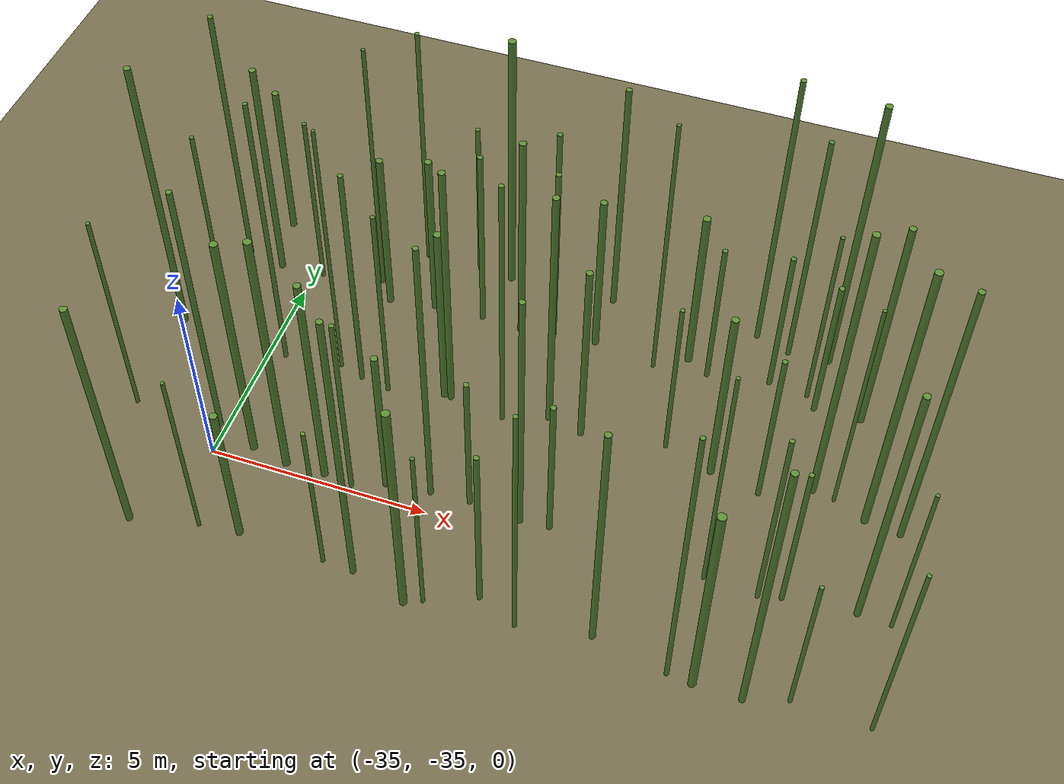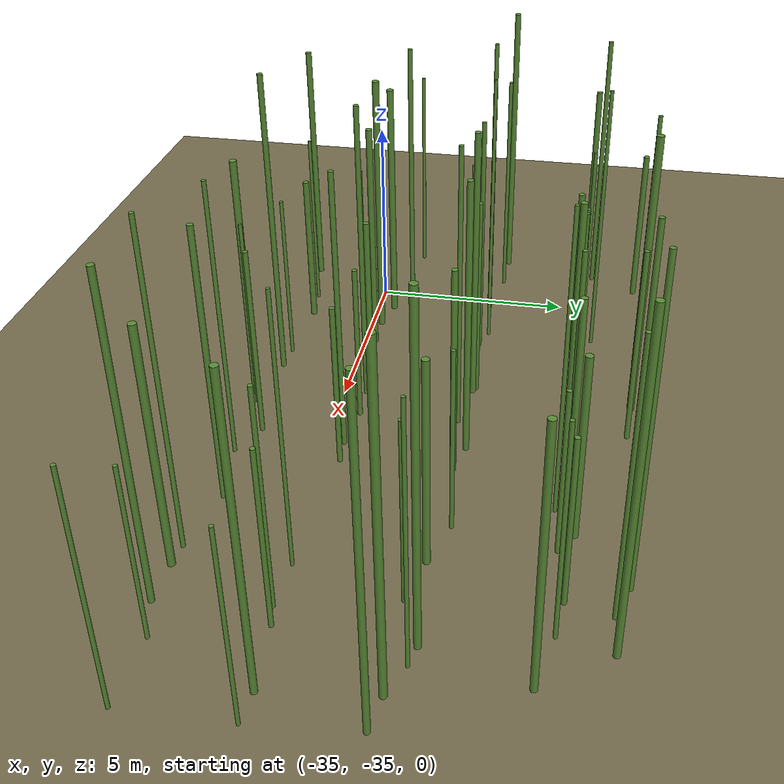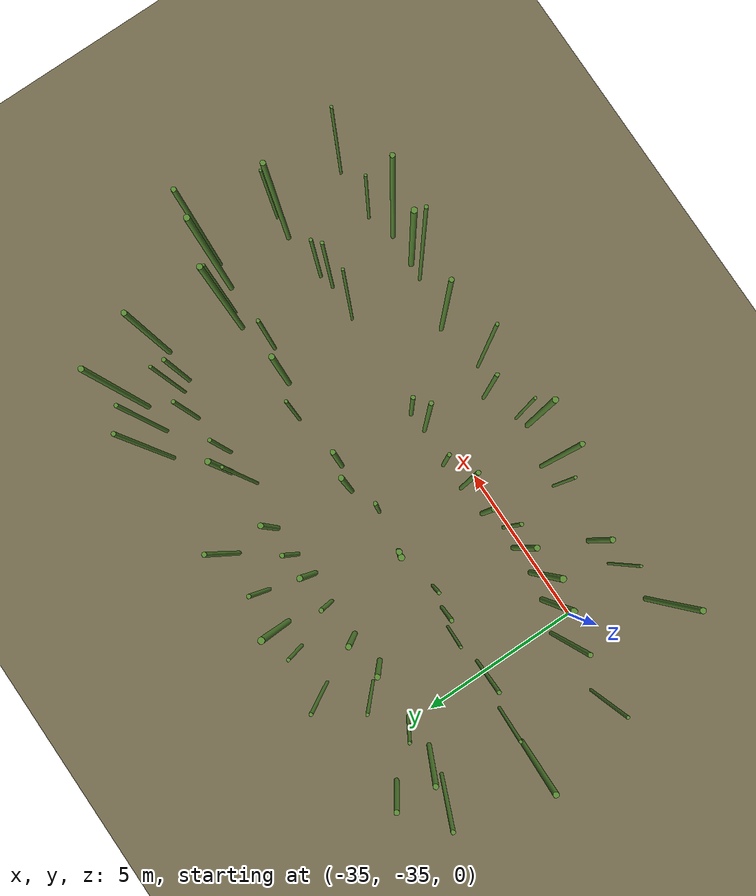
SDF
<sdf version="1.9">
 <world name="bamboo_field">
  <model name="ground_plane">
   <static>true</static>
   <link name="link">
    <collision name="collision">
     <geometry><plane><normal>0 0 1</normal><size>80.0 80.0</size></plane></geometry>
    </collision>
    <visual name="visual">
     <geometry><plane><normal>0 0 1</normal><size>80.0 80.0</size></plane></geometry>
     <material><diffuse>0.45 0.42 0.30 1</diffuse></material>
    </visual>
   </link>
  </model>
  <model name="bamboo_0">
   <static>true</static>
   <pose>-35.91546257525896 -37.1776013783931 3.3533989748458226 0 0 0</pose>
   <link name="link">
    <collision name="collision">
     <geometry>
      <cylinder><radius>0.07682356070820062</radius><length>6.706797949691645</length></cylinder>
     </geometry>
    </collision>
    <visual name="visual">
     <geometry>
      <cylinder><radius>0.07682356070820062</radius><length>6.706797949691645</length></cylinder>
     </geometry>
     <material><diffuse>0.35 0.55 0.20 1</diffuse><specular>0.1 0.1 0.1 1</specular></material>
    </visual>
   </link>
  </model>
  <model name="bamboo_1">
   <static>true</static>
   <pose>-34.42884524841114 -36.85699952481144 2.397675301373297 0 0 0</pose>
   <link name="link">
    <collision name="collision">
     <geometry>
      <cylinder><radius>0.04132679848419318</radius><length>4.795350602746594</length></cylinder>
     </geometry>
    </collision>
    <visual name="visual">
     <geometry>
      <cylinder><radius>0.04132679848419318</radius><length>4.795350602746594</length></cylinder>
     </geometry>
     <material><diffuse>0.35 0.55 0.20 1</diffuse><specular>0.1 0.1 0.1 1</specular></material>
    </visual>
   </link>
  </model>
  <model name="bamboo_2">
   <static>true</static>
   <pose>-33.53151462975757 -36.74976098474193 2.012997519356122 0 0 0</pose>
   <link name="link">
    <collision name="collision">
     <geometry>
      <cylinder><radius>0.08047152283389133</radius><length>4.025995038712244</length></cylinder>
     </geometry>
    </collision>
    <visual name="visual">
     <geometry>
      <cylinder><radius>0.08047152283389133</radius><length>4.025995038712244</length></cylinder>
     </geometry>
     <material><diffuse>0.35 0.55 0.20 1</diffuse><specular>0.1 0.1 0.1 1</specular></material>
    </visual>
   </link>
  </model>
  <model name="bamboo_3">
   <static>true</static>
   <pose>-31.583356614107394 -36.815850339276864 2.193432753666928 0 0 0</pose>
   <link name="link">
    <collision name="collision">
     <geometry>
      <cylinder><radius>0.04463729216900739</radius><length>4.386865507333856</length></cylinder>
     </geometry>
    </collision>
    <visual name="visual">
     <geometry>
      <cylinder><radius>0.04463729216900739</radius><length>4.386865507333856</length></cylinder>
     </geometry>
     <material><diffuse>0.35 0.55 0.20 1</diffuse><specular>0.1 0.1 0.1 1</specular></material>
    </visual>
   </link>
  </model>
  <model name="bamboo_4">
   <static>true</static>
   <pose>-30.888777297195016 -36.85203011934243 3.946231527958741 0 0 0</pose>
   <link name="link">
    <collision name="collision">
     <geometry>
      <cylinder><radius>0.06681140457273503</radius><length>7.892463055917482</length></cylinder>
     </geometry>
    </collision>
    <visual name="visual">
     <geometry>
      <cylinder><radius>0.06681140457273503</radius><length>7.892463055917482</length></cylinder>
     </geometry>
     <material><diffuse>0.35 0.55 0.20 1</diffuse><specular>0.1 0.1 0.1 1</specular></material>
    </visual>
   </link>
  </model>
  <model name="bamboo_5">
   <static>true</static>
   <pose>-29.62878921018922 -37.20638149267473 3.154704290513524 0 0 0</pose>
   <link name="link">
    <collision name="collision">
     <geometry>
      <cylinder><radius>0.08308534501553885</radius><length>6.309408581027048</length></cylinder>
     </geometry>
    </collision>
    <visual name="visual">
     <geometry>
      <cylinder><radius>0.08308534501553885</radius><length>6.309408581027048</length></cylinder>
     </geometry>
     <material><diffuse>0.35 0.55 0.20 1</diffuse><specular>0.1 0.1 0.1 1</specular></material>
    </visual>
   </link>
  </model>
  <model name="bamboo_6">
   <static>true</static>
   <pose>-29.260129184692236 -37.043877039056625 2.4655817727220604 0 0 0</pose>
   <link name="link">
    <collision name="collision">
     <geometry>
      <cylinder><radius>0.04398959884618137</radius><length>4.931163545444121</length></cylinder>
     </geometry>
    </collision>
    <visual name="visual">
     <geometry>
      <cylinder><radius>0.04398959884618137</radius><length>4.931163545444121</length></cylinder>
     </geometry>
     <material><diffuse>0.35 0.55 0.20 1</diffuse><specular>0.1 0.1 0.1 1</specular></material>
    </visual>
   </link>
  </model>
  <model name="bamboo_7">
   <static>true</static>
   <pose>-28.189671932138907 -36.58280034983495 2.4190140615429754 0 0 0</pose>
   <link name="link">
    <collision name="collision">
     <geometry>
      <cylinder><radius>0.05850904835584413</radius><length>4.838028123085951</length></cylinder>
     </geometry>
    </collision>
    <visual name="visual">
     <geometry>
      <cylinder><radius>0.05850904835584413</radius><length>4.838028123085951</length></cylinder>
     </geometry>
     <material><diffuse>0.35 0.55 0.20 1</diffuse><specular>0.1 0.1 0.1 1</specular></material>
    </visual>
   </link>
  </model>
  <model name="bamboo_8">
   <static>true</static>
   <pose>-27.302960507841295 -36.97283975200334 3.4582535959006986 0 0 0</pose>
   <link name="link">
    <collision name="collision">
     <geometry>
      <cylinder><radius>0.04855693240990485</radius><length>6.916507191801397</length></cylinder>
     </geometry>
    </collision>
    <visual name="visual">
     <geometry>
      <cylinder><radius>0.04855693240990485</radius><length>6.916507191801397</length></cylinder>
     </geometry>
     <material><diffuse>0.35 0.55 0.20 1</diffuse><specular>0.1 0.1 0.1 1</specular></material>
    </visual>
   </link>
  </model>
  <model name="bamboo_9">
   <static>true</static>
   <pose>-25.73153656908714 -36.69525862315132 3.369228501979749 0 0 0</pose>
   <link name="link">
    <collision name="collision">
     <geometry>
      <cylinder><radius>0.0678474871887323</radius><length>6.738457003959498</length></cylinder>
     </geometry>
    </collision>
    <visual name="visual">
     <geometry>
      <cylinder><radius>0.0678474871887323</radius><length>6.738457003959498</length></cylinder>
     </geometry>
     <material><diffuse>0.35 0.55 0.20 1</diffuse><specular>0.1 0.1 0.1 1</specular></material>
    </visual>
   </link>
  </model>
  <model name="bamboo_10">
   <static>true</static>
   <pose>-24.090275126679863 -37.018184044674754 3.885819428670109 0 0 0</pose>
   <link name="link">
    <collision name="collision">
     <geometry>
      <cylinder><radius>0.050549142179316324</radius><length>7.771638857340218</length></cylinder>
     </geometry>
    </collision>
    <visual name="visual">
     <geometry>
      <cylinder><radius>0.050549142179316324</radius><length>7.771638857340218</length></cylinder>
     </geometry>
     <material><diffuse>0.35 0.55 0.20 1</diffuse><specular>0.1 0.1 0.1 1</specular></material>
    </visual>
   </link>
  </model>
  <model name="bamboo_11">
   <static>true</static>
   <pose>-23.556140882544145 -37.0658193058479 2.9177037051747976 0 0 0</pose>
   <link name="link">
    <collision name="collision">
     <geometry>
      <cylinder><radius>0.08572737948702717</radius><length>5.835407410349595</length></cylinder>
     </geometry>
    </collision>
    <visual name="visual">
     <geometry>
      <cylinder><radius>0.08572737948702717</radius><length>5.835407410349595</length></cylinder>
     </geometry>
     <material><diffuse>0.35 0.55 0.20 1</diffuse><specular>0.1 0.1 0.1 1</specular></material>
    </visual>
   </link>
  </model>
  <model name="bamboo_12">
   <static>true</static>
   <pose>-22.537429391829242 -37.08493402982359 3.795645767204954 0 0 0</pose>
   <link name="link">
    <collision name="collision">
     <geometry>
      <cylinder><radius>0.06922929951117703</radius><length>7.591291534409908</length></cylinder>
     </geometry>
    </collision>
    <visual name="visual">
     <geometry>
      <cylinder><radius>0.06922929951117703</radius><length>7.591291534409908</length></cylinder>
     </geometry>
     <material><diffuse>0.35 0.55 0.20 1</diffuse><specular>0.1 0.1 0.1 1</specular></material>
    </visual>
   </link>
  </model>
  <model name="bamboo_13">
   <static>true</static>
   <pose>-21.641240311584017 -36.79924633204153 2.094232750849469 0 0 0</pose>
   <link name="link">
    <collision name="collision">
     <geometry>
      <cylinder><radius>0.04454547060868969</radius><length>4.188465501698938</length></cylinder>
     </geometry>
    </collision>
    <visual name="visual">
     <geometry>
      <cylinder><radius>0.04454547060868969</radius><length>4.188465501698938</length></cylinder>
     </geometry>
     <material><diffuse>0.35 0.55 0.20 1</diffuse><specular>0.1 0.1 0.1 1</specular></material>
    </visual>
   </link>
  </model>
  <model name="bamboo_14">
   <static>true</static>
   <pose>-20.003877990916223 -36.868078519664294 2.7632385730130737 0 0 0</pose>
   <link name="link">
    <collision name="collision">
     <geometry>
      <cylinder><radius>0.043176385307597855</radius><length>5.5264771460261475</length></cylinder>
     </geometry>
    </collision>
    <visual name="visual">
     <geometry>
      <cylinder><radius>0.043176385307597855</radius><length>5.5264771460261475</length></cylinder>
     </geometry>
     <material><diffuse>0.35 0.55 0.20 1</diffuse><specular>0.1 0.1 0.1 1</specular></material>
    </visual>
   </link>
  </model>
  <model name="bamboo_66">
   <static>true</static>
   <pose>-37.22687932280543 -34.27532529822672 2.8502923878854682 0 0 0</pose>
   <link name="link">
    <collision name="collision">
     <geometry>
      <cylinder><radius>0.04532936482817695</radius><length>5.7005847757709365</length></cylinder>
     </geometry>
    </collision>
    <visual name="visual">
     <geometry>
      <cylinder><radius>0.04532936482817695</radius><length>5.7005847757709365</length></cylinder>
     </geometry>
     <material><diffuse>0.35 0.55 0.20 1</diffuse><specular>0.1 0.1 0.1 1</specular></material>
    </visual>
   </link>
  </model>
  <model name="bamboo_67">
   <static>true</static>
   <pose>-35.175833175148064 -34.254376810675886 3.602833203444529 0 0 0</pose>
   <link name="link">
    <collision name="collision">
     <geometry>
      <cylinder><radius>0.06282309127350863</radius><length>7.205666406889058</length></cylinder>
     </geometry>
    </collision>
    <visual name="visual">
     <geometry>
      <cylinder><radius>0.06282309127350863</radius><length>7.205666406889058</length></cylinder>
     </geometry>
     <material><diffuse>0.35 0.55 0.20 1</diffuse><specular>0.1 0.1 0.1 1</specular></material>
    </visual>
   </link>
  </model>
  <model name="bamboo_68">
   <static>true</static>
   <pose>-34.20146488767757 -34.592556812445316 3.2253046455235257 0 0 0</pose>
   <link name="link">
    <collision name="collision">
     <geometry>
      <cylinder><radius>0.08457129629052185</radius><length>6.450609291047051</length></cylinder>
     </geometry>
    </collision>
    <visual name="visual">
     <geometry>
      <cylinder><radius>0.08457129629052185</radius><length>6.450609291047051</length></cylinder>
     </geometry>
     <material><diffuse>0.35 0.55 0.20 1</diffuse><specular>0.1 0.1 0.1 1</specular></material>
    </visual>
   </link>
  </model>
  <model name="bamboo_69">
   <static>true</static>
   <pose>-33.34045688690604 -34.76446744389688 3.48731088431917 0 0 0</pose>
   <link name="link">
    <collision name="collision">
     <geometry><cylinder><radius>0.0848604051616631</radius><length>6.97462176863834</length></cylinder></geometry>
    </collision>
    <visual name="visual">
     <geometry><cylinder><radius>0.0848604051616631</radius><length>6.97462176863834</length></cylinder></geometry>
     <material><diffuse>0.35 0.55 0.20 1</diffuse><specular>0.1 0.1 0.1 1</specular></material>
    </visual>
   </link>
  </model>
  <model name="bamboo_70">
   <static>true</static>
   <pose>-32.435109191791064 -34.75368331498012 3.0425996256559644 0 0 0</pose>
   <link name="link">
    <collision name="collision">
     <geometry>
      <cylinder><radius>0.07829068421485827</radius><length>6.085199251311929</length></cylinder>
     </geometry>
    </collision>
    <visual name="visual">
     <geometry>
      <cylinder><radius>0.07829068421485827</radius><length>6.085199251311929</length></cylinder>
     </geometry>
     <material><diffuse>0.35 0.55 0.20 1</diffuse><specular>0.1 0.1 0.1 1</specular></material>
    </visual>
   </link>
  </model>
  <model name="bamboo_71">
   <static>true</static>
   <pose>-31.7647332003695 -34.84903968476109 2.6394191368375246 0 0 0</pose>
   <link name="link">
    <collision name="collision">
     <geometry>
      <cylinder><radius>0.05358575535410923</radius><length>5.278838273675049</length></cylinder>
     </geometry>
    </collision>
    <visual name="visual">
     <geometry>
      <cylinder><radius>0.05358575535410923</radius><length>5.278838273675049</length></cylinder>
     </geometry>
     <material><diffuse>0.35 0.55 0.20 1</diffuse><specular>0.1 0.1 0.1 1</specular></material>
    </visual>
   </link>
  </model>
  <model name="bamboo_72">
   <static>true</static>
   <pose>-31.06501560547453 -34.56607372946966 2.128457701427756 0 0 0</pose>
   <link name="link">
    <collision name="collision">
     <geometry>
      <cylinder><radius>0.07532095708472761</radius><length>4.256915402855512</length></cylinder>
     </geometry>
    </collision>
    <visual name="visual">
     <geometry>
      <cylinder><radius>0.07532095708472761</radius><length>4.256915402855512</length></cylinder>
     </geometry>
     <material><diffuse>0.35 0.55 0.20 1</diffuse><specular>0.1 0.1 0.1 1</specular></material>
    </visual>
   </link>
  </model>
  <model name="bamboo_73">
   <static>true</static>
   <pose>-30.075169880656922 -34.45903543727382 3.809676956680354 0 0 0</pose>
   <link name="link">
    <collision name="collision">
     <geometry>
      <cylinder><radius>0.06100717588867128</radius><length>7.619353913360708</length></cylinder>
     </geometry>
    </collision>
    <visual name="visual">
     <geometry>
      <cylinder><radius>0.06100717588867128</radius><length>7.619353913360708</length></cylinder>
     </geometry>
     <material><diffuse>0.35 0.55 0.20 1</diffuse><specular>0.1 0.1 0.1 1</specular></material>
    </visual>
   </link>
  </model>
  <model name="bamboo_74">
   <static>true</static>
   <pose>-29.195101495808032 -34.41846894028083 2.011792167167986 0 0 0</pose>
   <link name="link">
    <collision name="collision">
     <geometry>
      <cylinder><radius>0.059019051446385584</radius><length>4.023584334335972</length></cylinder>
     </geometry>
    </collision>
    <visual name="visual">
     <geometry>
      <cylinder><radius>0.059019051446385584</radius><length>4.023584334335972</length></cylinder>
     </geometry>
     <material><diffuse>0.35 0.55 0.20 1</diffuse><specular>0.1 0.1 0.1 1</specular></material>
    </visual>
   </link>
  </model>
  <model name="bamboo_75">
   <static>true</static>
   <pose>-28.017660860636976 -34.52362471556353 3.4950313379561013 0 0 0</pose>
   <link name="link">
    <collision name="collision">
     <geometry>
      <cylinder><radius>0.060951064131491095</radius><length>6.990062675912203</length></cylinder>
     </geometry>
    </collision>
    <visual name="visual">
     <geometry>
      <cylinder><radius>0.060951064131491095</radius><length>6.990062675912203</length></cylinder>
     </geometry>
     <material><diffuse>0.35 0.55 0.20 1</diffuse><specular>0.1 0.1 0.1 1</specular></material>
    </visual>
   </link>
  </model>
  <model name="bamboo_76">
   <static>true</static>
   <pose>-27.37644731913227 -34.470502208302555 2.0580496398934303 0 0 0</pose>
   <link name="link">
    <collision name="collision">
     <geometry>
      <cylinder><radius>0.06179179880233183</radius><length>4.1160992797868605</length></cylinder>
     </geometry>
    </collision>
    <visual name="visual">
     <geometry>
      <cylinder><radius>0.06179179880233183</radius><length>4.1160992797868605</length></cylinder>
     </geometry>
     <material><diffuse>0.35 0.55 0.20 1</diffuse><specular>0.1 0.1 0.1 1</specular></material>
    </visual>
   </link>
  </model>
  <model name="bamboo_77">
   <static>true</static>
   <pose>-23.961554744386255 -34.62271261698634 3.2854992960186715 0 0 0</pose>
   <link name="link">
    <collision name="collision">
     <geometry>
      <cylinder><radius>0.04135510231701562</radius><length>6.570998592037343</length></cylinder>
     </geometry>
    </collision>
    <visual name="visual">
     <geometry>
      <cylinder><radius>0.04135510231701562</radius><length>6.570998592037343</length></cylinder>
     </geometry>
     <material><diffuse>0.35 0.55 0.20 1</diffuse><specular>0.1 0.1 0.1 1</specular></material>
    </visual>
   </link>
  </model>
  <model name="bamboo_78">
   <static>true</static>
   <pose>-22.80356973652638 -34.680513176927505 2.653691609762617 0 0 0</pose>
   <link name="link">
    <collision name="collision">
     <geometry>
      <cylinder><radius>0.050583014210574075</radius><length>5.307383219525234</length></cylinder>
     </geometry>
    </collision>
    <visual name="visual">
     <geometry>
      <cylinder><radius>0.050583014210574075</radius><length>5.307383219525234</length></cylinder>
     </geometry>
     <material><diffuse>0.35 0.55 0.20 1</diffuse><specular>0.1 0.1 0.1 1</specular></material>
    </visual>
   </link>
  </model>
  <model name="bamboo_79">
   <static>true</static>
   <pose>-22.32205830169528 -34.568308194276625 2.163812465523285 0 0 0</pose>
   <link name="link">
    <collision name="collision">
     <geometry>
      <cylinder><radius>0.05261357658911903</radius><length>4.32762493104657</length></cylinder>
     </geometry>
    </collision>
    <visual name="visual">
     <geometry>
      <cylinder><radius>0.05261357658911903</radius><length>4.32762493104657</length></cylinder>
     </geometry>
     <material><diffuse>0.35 0.55 0.20 1</diffuse><specular>0.1 0.1 0.1 1</specular></material>
    </visual>
   </link>
  </model>
  <model name="bamboo_80">
   <static>true</static>
   <pose>-20.77943521255588 -34.41793828498073 3.5624660992217896 0 0 0</pose>
   <link name="link">
    <collision name="collision">
     <geometry>
      <cylinder><radius>0.07250720466249375</radius><length>7.124932198443579</length></cylinder>
     </geometry>
    </collision>
    <visual name="visual">
     <geometry>
      <cylinder><radius>0.07250720466249375</radius><length>7.124932198443579</length></cylinder>
     </geometry>
     <material><diffuse>0.35 0.55 0.20 1</diffuse><specular>0.1 0.1 0.1 1</specular></material>
    </visual>
   </link>
  </model>
  <model name="bamboo_81">
   <static>true</static>
   <pose>-20.067464095728262 -34.477280336588464 2.3047646915695807 0 0 0</pose>
   <link name="link">
    <collision name="collision">
     <geometry>
      <cylinder><radius>0.04101900086601662</radius><length>4.6095293831391615</length></cylinder>
     </geometry>
    </collision>
    <visual name="visual">
     <geometry>
      <cylinder><radius>0.04101900086601662</radius><length>4.6095293831391615</length></cylinder>
     </geometry>
     <material><diffuse>0.35 0.55 0.20 1</diffuse><specular>0.1 0.1 0.1 1</specular></material>
    </visual>
   </link>
  </model>
  <model name="bamboo_133">
   <static>true</static>
   <pose>-37.31780632192595 -31.711060600149484 3.8068481241009717 0 0 0</pose>
   <link name="link">
    <collision name="collision">
     <geometry>
      <cylinder><radius>0.07470005813966173</radius><length>7.6136962482019435</length></cylinder>
     </geometry>
    </collision>
    <visual name="visual">
     <geometry>
      <cylinder><radius>0.07470005813966173</radius><length>7.6136962482019435</length></cylinder>
     </geometry>
     <material><diffuse>0.35 0.55 0.20 1</diffuse><specular>0.1 0.1 0.1 1</specular></material>
    </visual>
   </link>
  </model>
  <model name="bamboo_134">
   <static>true</static>
   <pose>-36.13650324627277 -31.713597394046367 3.06233263629752 0 0 0</pose>
   <link name="link">
    <collision name="collision">
     <geometry>
      <cylinder><radius>0.04727848978496992</radius><length>6.12466527259504</length></cylinder>
     </geometry>
    </collision>
    <visual name="visual">
     <geometry>
      <cylinder><radius>0.04727848978496992</radius><length>6.12466527259504</length></cylinder>
     </geometry>
     <material><diffuse>0.35 0.55 0.20 1</diffuse><specular>0.1 0.1 0.1 1</specular></material>
    </visual>
   </link>
  </model>
  <model name="bamboo_135">
   <static>true</static>
   <pose>-34.61614118643878 -31.945556086414534 3.8256580320471096 0 0 0</pose>
   <link name="link">
    <collision name="collision">
     <geometry>
      <cylinder><radius>0.052041489592815654</radius><length>7.651316064094219</length></cylinder>
     </geometry>
    </collision>
    <visual name="visual">
     <geometry>
      <cylinder><radius>0.052041489592815654</radius><length>7.651316064094219</length></cylinder>
     </geometry>
     <material><diffuse>0.35 0.55 0.20 1</diffuse><specular>0.1 0.1 0.1 1</specular></material>
    </visual>
   </link>
  </model>
  <model name="bamboo_136">
   <static>true</static>
   <pose>-33.2838860582441 -31.79403340577368 3.6092661539502924 0 0 0</pose>
   <link name="link">
    <collision name="collision">
     <geometry>
      <cylinder><radius>0.04046987157274355</radius><length>7.218532307900585</length></cylinder>
     </geometry>
    </collision>
    <visual name="visual">
     <geometry>
      <cylinder><radius>0.04046987157274355</radius><length>7.218532307900585</length></cylinder>
     </geometry>
     <material><diffuse>0.35 0.55 0.20 1</diffuse><specular>0.1 0.1 0.1 1</specular></material>
    </visual>
   </link>
  </model>
  <model name="bamboo_137">
   <static>true</static>
   <pose>-32.70428531428259 -31.971344768840407 3.1751434102528426 0 0 0</pose>
   <link name="link">
    <collision name="collision">
     <geometry>
      <cylinder><radius>0.05727828122215409</radius><length>6.350286820505685</length></cylinder>
     </geometry>
    </collision>
    <visual name="visual">
     <geometry>
      <cylinder><radius>0.05727828122215409</radius><length>6.350286820505685</length></cylinder>
     </geometry>
     <material><diffuse>0.35 0.55 0.20 1</diffuse><specular>0.1 0.1 0.1 1</specular></material>
    </visual>
   </link>
  </model>
  <model name="bamboo_138">
   <static>true</static>
   <pose>-32.01325747343007 -32.10231703441373 2.7693864979346907 0 0 0</pose>
   <link name="link">
    <collision name="collision">
     <geometry>
      <cylinder><radius>0.049960849955444614</radius><length>5.538772995869381</length></cylinder>
     </geometry>
    </collision>
    <visual name="visual">
     <geometry>
      <cylinder><radius>0.049960849955444614</radius><length>5.538772995869381</length></cylinder>
     </geometry>
     <material><diffuse>0.35 0.55 0.20 1</diffuse><specular>0.1 0.1 0.1 1</specular></material>
    </visual>
   </link>
  </model>
  <model name="bamboo_139">
   <static>true</static>
   <pose>-30.73817290002743 -31.807600154612956 2.5904615077665385 0 0 0</pose>
   <link name="link">
    <collision name="collision">
     <geometry>
      <cylinder><radius>0.08963460218134488</radius><length>5.180923015533077</length></cylinder>
     </geometry>
    </collision>
    <visual name="visual">
     <geometry>
      <cylinder><radius>0.08963460218134488</radius><length>5.180923015533077</length></cylinder>
     </geometry>
     <material><diffuse>0.35 0.55 0.20 1</diffuse><specular>0.1 0.1 0.1 1</specular></material>
    </visual>
   </link>
  </model>
  <model name="bamboo_140">
   <static>true</static>
   <pose>-30.57861091161674 -31.843876480609502 3.4893376823306506 0 0 0</pose>
   <link name="link">
    <collision name="collision">
     <geometry>
      <cylinder><radius>0.0742899746367006</radius><length>6.978675364661301</length></cylinder>
     </geometry>
    </collision>
    <visual name="visual">
     <geometry>
      <cylinder><radius>0.0742899746367006</radius><length>6.978675364661301</length></cylinder>
     </geometry>
     <material><diffuse>0.35 0.55 0.20 1</diffuse><specular>0.1 0.1 0.1 1</specular></material>
    </visual>
   </link>
  </model>
  <model name="bamboo_141">
   <static>true</static>
   <pose>-29.289305473835405 -32.02173635667831 3.5977202390151977 0 0 0</pose>
   <link name="link">
    <collision name="collision">
     <geometry>
      <cylinder><radius>0.05430970757295972</radius><length>7.195440478030395</length></cylinder>
     </geometry>
    </collision>
    <visual name="visual">
     <geometry>
      <cylinder><radius>0.05430970757295972</radius><length>7.195440478030395</length></cylinder>
     </geometry>
     <material><diffuse>0.35 0.55 0.20 1</diffuse><specular>0.1 0.1 0.1 1</specular></material>
    </visual>
   </link>
  </model>
  <model name="bamboo_142">
   <static>true</static>
   <pose>-28.29817674312631 -31.681525043889273 3.441856753341418 0 0 0</pose>
   <link name="link">
    <collision name="collision">
     <geometry>
      <cylinder><radius>0.07388822293116798</radius><length>6.883713506682836</length></cylinder>
     </geometry>
    </collision>
    <visual name="visual">
     <geometry>
      <cylinder><radius>0.07388822293116798</radius><length>6.883713506682836</length></cylinder>
     </geometry>
     <material><diffuse>0.35 0.55 0.20 1</diffuse><specular>0.1 0.1 0.1 1</specular></material>
    </visual>
   </link>
  </model>
  <model name="bamboo_143">
   <static>true</static>
   <pose>-27.499728346759305 -31.86265936200515 2.617865767905272 0 0 0</pose>
   <link name="link">
    <collision name="collision">
     <geometry>
      <cylinder><radius>0.07231703044452614</radius><length>5.235731535810544</length></cylinder>
     </geometry>
    </collision>
    <visual name="visual">
     <geometry>
      <cylinder><radius>0.07231703044452614</radius><length>5.235731535810544</length></cylinder>
     </geometry>
     <material><diffuse>0.35 0.55 0.20 1</diffuse><specular>0.1 0.1 0.1 1</specular></material>
    </visual>
   </link>
  </model>
  <model name="bamboo_144">
   <static>true</static>
   <pose>-25.619731060756823 -31.588318318915096 2.264319595493567 0 0 0</pose>
   <link name="link">
    <collision name="collision">
     <geometry>
      <cylinder><radius>0.04878200352221533</radius><length>4.528639190987134</length></cylinder>
     </geometry>
    </collision>
    <visual name="visual">
     <geometry>
      <cylinder><radius>0.04878200352221533</radius><length>4.528639190987134</length></cylinder>
     </geometry>
     <material><diffuse>0.35 0.55 0.20 1</diffuse><specular>0.1 0.1 0.1 1</specular></material>
    </visual>
   </link>
  </model>
  <model name="bamboo_145">
   <static>true</static>
   <pose>-24.50769267378512 -31.931067544851416 2.5139401691265246 0 0 0</pose>
   <link name="link">
    <collision name="collision">
     <geometry>
      <cylinder><radius>0.08152363097836987</radius><length>5.027880338253049</length></cylinder>
     </geometry>
    </collision>
    <visual name="visual">
     <geometry>
      <cylinder><radius>0.08152363097836987</radius><length>5.027880338253049</length></cylinder>
     </geometry>
     <material><diffuse>0.35 0.55 0.20 1</diffuse><specular>0.1 0.1 0.1 1</specular></material>
    </visual>
   </link>
  </model>
  <model name="bamboo_146">
   <static>true</static>
   <pose>-23.388354840039085 -32.169831115258916 2.230339414899519 0 0 0</pose>
   <link name="link">
    <collision name="collision">
     <geometry>
      <cylinder><radius>0.056935762690094316</radius><length>4.460678829799038</length></cylinder>
     </geometry>
    </collision>
    <visual name="visual">
     <geometry>
      <cylinder><radius>0.056935762690094316</radius><length>4.460678829799038</length></cylinder>
     </geometry>
     <material><diffuse>0.35 0.55 0.20 1</diffuse><specular>0.1 0.1 0.1 1</specular></material>
    </visual>
   </link>
  </model>
  <model name="bamboo_147">
   <static>true</static>
   <pose>-22.298691238152173 -31.70514967494864 3.9598844855638067 0 0 0</pose>
   <link name="link">
    <collision name="collision">
     <geometry>
      <cylinder><radius>0.07621083560377591</radius><length>7.919768971127613</length></cylinder>
     </geometry>
    </collision>
    <visual name="visual">
     <geometry>
      <cylinder><radius>0.07621083560377591</radius><length>7.919768971127613</length></cylinder>
     </geometry>
     <material><diffuse>0.35 0.55 0.20 1</diffuse><specular>0.1 0.1 0.1 1</specular></material>
    </visual>
   </link>
  </model>
  <model name="bamboo_148">
   <static>true</static>
   <pose>-21.81111982208626 -31.797381158451405 3.0731446165381184 0 0 0</pose>
   <link name="link">
    <collision name="collision">
     <geometry>
      <cylinder><radius>0.04069593275504506</radius><length>6.146289233076237</length></cylinder>
     </geometry>
    </collision>
    <visual name="visual">
     <geometry>
      <cylinder><radius>0.04069593275504506</radius><length>6.146289233076237</length></cylinder>
     </geometry>
     <material><diffuse>0.35 0.55 0.20 1</diffuse><specular>0.1 0.1 0.1 1</specular></material>
    </visual>
   </link>
  </model>
  <model name="bamboo_149">
   <static>true</static>
   <pose>-21.084691451020102 -32.10468569421492 3.8805837835591084 0 0 0</pose>
   <link name="link">
    <collision name="collision">
     <geometry>
      <cylinder><radius>0.08112086506133871</radius><length>7.761167567118217</length></cylinder>
     </geometry>
    </collision>
    <visual name="visual">
     <geometry>
      <cylinder><radius>0.08112086506133871</radius><length>7.761167567118217</length></cylinder>
     </geometry>
     <material><diffuse>0.35 0.55 0.20 1</diffuse><specular>0.1 0.1 0.1 1</specular></material>
    </visual>
   </link>
  </model>
  <model name="bamboo_150">
   <static>true</static>
   <pose>-20.295566822649178 -32.2241090969509 3.830511817486319 0 0 0</pose>
   <link name="link">
    <collision name="collision">
     <geometry>
      <cylinder><radius>0.06807036911249394</radius><length>7.661023634972638</length></cylinder>
     </geometry>
    </collision>
    <visual name="visual">
     <geometry>
      <cylinder><radius>0.06807036911249394</radius><length>7.661023634972638</length></cylinder>
     </geometry>
     <material><diffuse>0.35 0.55 0.20 1</diffuse><specular>0.1 0.1 0.1 1</specular></material>
    </visual>
   </link>
  </model>
  <model name="bamboo_200">
   <static>true</static>
   <pose>-36.78077065132964 -29.189916435308845 3.583323915727087 0 0 0</pose>
   <link name="link">
    <collision name="collision">
     <geometry>
      <cylinder><radius>0.05883396530281501</radius><length>7.166647831454174</length></cylinder>
     </geometry>
    </collision>
    <visual name="visual">
     <geometry>
      <cylinder><radius>0.05883396530281501</radius><length>7.166647831454174</length></cylinder>
     </geometry>
     <material><diffuse>0.35 0.55 0.20 1</diffuse><specular>0.1 0.1 0.1 1</specular></material>
    </visual>
   </link>
  </model>
  <model name="bamboo_201">
   <static>true</static>
   <pose>-35.86619903632877 -29.36261345887968 3.052786679468348 0 0 0</pose>
   <link name="link">
    <collision name="collision">
     <geometry>
      <cylinder><radius>0.07427072201387881</radius><length>6.105573358936696</length></cylinder>
     </geometry>
    </collision>
    <visual name="visual">
     <geometry>
      <cylinder><radius>0.07427072201387881</radius><length>6.105573358936696</length></cylinder>
     </geometry>
     <material><diffuse>0.35 0.55 0.20 1</diffuse><specular>0.1 0.1 0.1 1</specular></material>
    </visual>
   </link>
  </model>
  <model name="bamboo_202">
   <static>true</static>
   <pose>-34.810317385029464 -29.31860827069424 2.4283853224178005 0 0 0</pose>
   <link name="link">
    <collision name="collision">
     <geometry>
      <cylinder><radius>0.04901314614384223</radius><length>4.856770644835601</length></cylinder>
     </geometry>
    </collision>
    <visual name="visual">
     <geometry>
      <cylinder><radius>0.04901314614384223</radius><length>4.856770644835601</length></cylinder>
     </geometry>
     <material><diffuse>0.35 0.55 0.20 1</diffuse><specular>0.1 0.1 0.1 1</specular></material>
    </visual>
   </link>
  </model>
  <model name="bamboo_203">
   <static>true</static>
   <pose>-33.36761804132541 -29.04042039946036 3.541749440726202 0 0 0</pose>
   <link name="link">
    <collision name="collision">
     <geometry>
      <cylinder><radius>0.04505703818339471</radius><length>7.083498881452404</length></cylinder>
     </geometry>
    </collision>
    <visual name="visual">
     <geometry>
      <cylinder><radius>0.04505703818339471</radius><length>7.083498881452404</length></cylinder>
     </geometry>
     <material><diffuse>0.35 0.55 0.20 1</diffuse><specular>0.1 0.1 0.1 1</specular></material>
    </visual>
   </link>
  </model>
  <model name="bamboo_204">
   <static>true</static>
   <pose>-32.9733990134508 -29.545424866843238 2.262098082859016 0 0 0</pose>
   <link name="link">
    <collision name="collision">
     <geometry>
      <cylinder><radius>0.07831538022236208</radius><length>4.524196165718032</length></cylinder>
     </geometry>
    </collision>
    <visual name="visual">
     <geometry>
      <cylinder><radius>0.07831538022236208</radius><length>4.524196165718032</length></cylinder>
     </geometry>
     <material><diffuse>0.35 0.55 0.20 1</diffuse><specular>0.1 0.1 0.1 1</specular></material>
    </visual>
   </link>
  </model>
  <model name="bamboo_205">
   <static>true</static>
   <pose>-31.898193516754077 -29.37139688725758 2.3310783314881176 0 0 0</pose>
   <link name="link">
    <collision name="collision">
     <geometry>
      <cylinder><radius>0.08045218598196505</radius><length>4.662156662976235</length></cylinder>
     </geometry>
    </collision>
    <visual name="visual">
     <geometry>
      <cylinder><radius>0.08045218598196505</radius><length>4.662156662976235</length></cylinder>
     </geometry>
     <material><diffuse>0.35 0.55 0.20 1</diffuse><specular>0.1 0.1 0.1 1</specular></material>
    </visual>
   </link>
  </model>
  <model name="bamboo_206">
   <static>true</static>
   <pose>-30.7100441688087 -29.344748341181813 2.5698558651267165 0 0 0</pose>
   <link name="link">
    <collision name="collision">
     <geometry>
      <cylinder><radius>0.06220993549026378</radius><length>5.139711730253433</length></cylinder>
     </geometry>
    </collision>
    <visual name="visual">
     <geometry>
      <cylinder><radius>0.06220993549026378</radius><length>5.139711730253433</length></cylinder>
     </geometry>
     <material><diffuse>0.35 0.55 0.20 1</diffuse><specular>0.1 0.1 0.1 1</specular></material>
    </visual>
   </link>
  </model>
  <model name="bamboo_207">
   <static>true</static>
   <pose>-29.735835896688204 -29.40150924454763 2.9380312100645054 0 0 0</pose>
   <link name="link">
    <collision name="collision">
     <geometry>
      <cylinder><radius>0.08043119355453932</radius><length>5.876062420129011</length></cylinder>
     </geometry>
    </collision>
    <visual name="visual">
     <geometry>
      <cylinder><radius>0.08043119355453932</radius><length>5.876062420129011</length></cylinder>
     </geometry>
     <material><diffuse>0.35 0.55 0.20 1</diffuse><specular>0.1 0.1 0.1 1</specular></material>
    </visual>
   </link>
  </model>
  <model name="bamboo_208">
   <static>true</static>
   <pose>-28.97425249956505 -29.289776063382114 2.563543465407551 0 0 0</pose>
   <link name="link">
    <collision name="collision">
     <geometry>
      <cylinder><radius>0.06308399892204945</radius><length>5.127086930815102</length></cylinder>
     </geometry>
    </collision>
    <visual name="visual">
     <geometry>
      <cylinder><radius>0.06308399892204945</radius><length>5.127086930815102</length></cylinder>
     </geometry>
     <material><diffuse>0.35 0.55 0.20 1</diffuse><specular>0.1 0.1 0.1 1</specular></material>
    </visual>
   </link>
  </model>
  <model name="bamboo_209">
   <static>true</static>
   <pose>-27.980053694103866 -29.21017258996204 2.2767970692068626 0 0 0</pose>
   <link name="link">
    <collision name="collision">
     <geometry>
      <cylinder><radius>0.08006296120757739</radius><length>4.553594138413725</length></cylinder>
     </geometry>
    </collision>
    <visual name="visual">
     <geometry>
      <cylinder><radius>0.08006296120757739</radius><length>4.553594138413725</length></cylinder>
     </geometry>
     <material><diffuse>0.35 0.55 0.20 1</diffuse><specular>0.1 0.1 0.1 1</specular></material>
    </visual>
   </link>
  </model>
  <model name="bamboo_210">
   <static>true</static>
   <pose>-26.509592930535934 -29.45945380546362 3.691784553466877 0 0 0</pose>
   <link name="link">
    <collision name="collision">
     <geometry>
      <cylinder><radius>0.04512948658742047</radius><length>7.383569106933754</length></cylinder>
     </geometry>
    </collision>
    <visual name="visual">
     <geometry>
      <cylinder><radius>0.04512948658742047</radius><length>7.383569106933754</length></cylinder>
     </geometry>
     <material><diffuse>0.35 0.55 0.20 1</diffuse><specular>0.1 0.1 0.1 1</specular></material>
    </visual>
   </link>
  </model>
  <model name="bamboo_211">
   <static>true</static>
   <pose>-25.793931639942116 -28.99650863119692 2.2946973119832084 0 0 0</pose>
   <link name="link">
    <collision name="collision">
     <geometry>
      <cylinder><radius>0.08526531044891206</radius><length>4.589394623966417</length></cylinder>
     </geometry>
    </collision>
    <visual name="visual">
     <geometry>
      <cylinder><radius>0.08526531044891206</radius><length>4.589394623966417</length></cylinder>
     </geometry>
     <material><diffuse>0.35 0.55 0.20 1</diffuse><specular>0.1 0.1 0.1 1</specular></material>
    </visual>
   </link>
  </model>
  <model name="bamboo_212">
   <static>true</static>
   <pose>-25.27406740829606 -29.307592935019887 2.053340381605877 0 0 0</pose>
   <link name="link">
    <collision name="collision">
     <geometry>
      <cylinder><radius>0.05747925390693245</radius><length>4.106680763211754</length></cylinder>
     </geometry>
    </collision>
    <visual name="visual">
     <geometry>
      <cylinder><radius>0.05747925390693245</radius><length>4.106680763211754</length></cylinder>
     </geometry>
     <material><diffuse>0.35 0.55 0.20 1</diffuse><specular>0.1 0.1 0.1 1</specular></material>
    </visual>
   </link>
  </model>
  <model name="bamboo_213">
   <static>true</static>
   <pose>-23.865457866445475 -29.07157451397703 2.0563750910563003 0 0 0</pose>
   <link name="link">
    <collision name="collision">
     <geometry>
      <cylinder><radius>0.05874563367088838</radius><length>4.112750182112601</length></cylinder>
     </geometry>
    </collision>
    <visual name="visual">
     <geometry>
      <cylinder><radius>0.05874563367088838</radius><length>4.112750182112601</length></cylinder>
     </geometry>
     <material><diffuse>0.35 0.55 0.20 1</diffuse><specular>0.1 0.1 0.1 1</specular></material>
    </visual>
   </link>
  </model>
  <model name="bamboo_214">
   <static>true</static>
   <pose>-22.97621861784579 -29.171747523301963 2.5737587946265363 0 0 0</pose>
   <link name="link">
    <collision name="collision">
     <geometry>
      <cylinder><radius>0.04687997938629358</radius><length>5.147517589253073</length></cylinder>
     </geometry>
    </collision>
    <visual name="visual">
     <geometry>
      <cylinder><radius>0.04687997938629358</radius><length>5.147517589253073</length></cylinder>
     </geometry>
     <material><diffuse>0.35 0.55 0.20 1</diffuse><specular>0.1 0.1 0.1 1</specular></material>
    </visual>
   </link>
  </model>
  <model name="bamboo_215">
   <static>true</static>
   <pose>-22.746076609435992 -29.47985116539922 2.010502396611236 0 0 0</pose>
   <link name="link">
    <collision name="collision">
     <geometry>
      <cylinder><radius>0.062430073699112326</radius><length>4.021004793222472</length></cylinder>
     </geometry>
    </collision>
    <visual name="visual">
     <geometry>
      <cylinder><radius>0.062430073699112326</radius><length>4.021004793222472</length></cylinder>
     </geometry>
     <material><diffuse>0.35 0.55 0.20 1</diffuse><specular>0.1 0.1 0.1 1</specular></material>
    </visual>
   </link>
  </model>
  <model name="bamboo_216">
   <static>true</static>
   <pose>-21.689718607385576 -29.457326810677692 3.0555430117734486 0 0 0</pose>
   <link name="link">
    <collision name="collision">
     <geometry>
      <cylinder><radius>0.07636173926624659</radius><length>6.111086023546897</length></cylinder>
     </geometry>
    </collision>
    <visual name="visual">
     <geometry>
      <cylinder><radius>0.07636173926624659</radius><length>6.111086023546897</length></cylinder>
     </geometry>
     <material><diffuse>0.35 0.55 0.20 1</diffuse><specular>0.1 0.1 0.1 1</specular></material>
    </visual>
   </link>
  </model>
  <model name="bamboo_270">
   <static>true</static>
   <pose>-36.18513387999147 -27.983173274672378 2.124562572028864 0 0 0</pose>
   <link name="link">
    <collision name="collision">
     <geometry>
      <cylinder><radius>0.07679186356343407</radius><length>4.249125144057728</length></cylinder>
     </geometry>
    </collision>
    <visual name="visual">
     <geometry>
      <cylinder><radius>0.07679186356343407</radius><length>4.249125144057728</length></cylinder>
     </geometry>
     <material><diffuse>0.35 0.55 0.20 1</diffuse><specular>0.1 0.1 0.1 1</specular></material>
    </visual>
   </link>
  </model>
  <model name="bamboo_274">
   <static>true</static>
   <pose>-32.62983601954278 -27.884150246211338 3.4099765194803933 0 0 0</pose>
   <link name="link">
    <collision name="collision">
     <geometry>
      <cylinder><radius>0.05036388974273201</radius><length>6.8199530389607865</length></cylinder>
     </geometry>
    </collision>
    <visual name="visual">
     <geometry>
      <cylinder><radius>0.05036388974273201</radius><length>6.8199530389607865</length></cylinder>
     </geometry>
     <material><diffuse>0.35 0.55 0.20 1</diffuse><specular>0.1 0.1 0.1 1</specular></material>
    </visual>
   </link>
  </model>
  <model name="bamboo_275">
   <static>true</static>
   <pose>-31.30464881909959 -27.862526538390185 2.24374821146543 0 0 0</pose>
   <link name="link">
    <collision name="collision">
     <geometry>
      <cylinder><radius>0.05367287683777115</radius><length>4.48749642293086</length></cylinder>
     </geometry>
    </collision>
    <visual name="visual">
     <geometry>
      <cylinder><radius>0.05367287683777115</radius><length>4.48749642293086</length></cylinder>
     </geometry>
     <material><diffuse>0.35 0.55 0.20 1</diffuse><specular>0.1 0.1 0.1 1</specular></material>
    </visual>
   </link>
  </model>
  <model name="bamboo_276">
   <static>true</static>
   <pose>-30.482903319823773 -27.926971229022353 3.6092316679131407 0 0 0</pose>
   <link name="link">
    <collision name="collision">
     <geometry>
      <cylinder><radius>0.08773044316957307</radius><length>7.218463335826281</length></cylinder>
     </geometry>
    </collision>
    <visual name="visual">
     <geometry>
      <cylinder><radius>0.08773044316957307</radius><length>7.218463335826281</length></cylinder>
     </geometry>
     <material><diffuse>0.35 0.55 0.20 1</diffuse><specular>0.1 0.1 0.1 1</specular></material>
    </visual>
   </link>
  </model>
  <model name="bamboo_277">
   <static>true</static>
   <pose>-29.36520817710793 -27.986864863111833 2.512887950946964 0 0 0</pose>
   <link name="link">
    <collision name="collision">
     <geometry>
      <cylinder><radius>0.06211880559324177</radius><length>5.025775901893928</length></cylinder>
     </geometry>
    </collision>
    <visual name="visual">
     <geometry>
      <cylinder><radius>0.06211880559324177</radius><length>5.025775901893928</length></cylinder>
     </geometry>
     <material><diffuse>0.35 0.55 0.20 1</diffuse><specular>0.1 0.1 0.1 1</specular></material>
    </visual>
   </link>
  </model>
  <model name="bamboo_279">
   <static>true</static>
   <pose>-27.95140550158427 -27.839001511918468 3.275889146817275 0 0 0</pose>
   <link name="link">
    <collision name="collision">
     <geometry>
      <cylinder><radius>0.06655207448663995</radius><length>6.55177829363455</length></cylinder>
     </geometry>
    </collision>
    <visual name="visual">
     <geometry>
      <cylinder><radius>0.06655207448663995</radius><length>6.55177829363455</length></cylinder>
     </geometry>
     <material><diffuse>0.35 0.55 0.20 1</diffuse><specular>0.1 0.1 0.1 1</specular></material>
    </visual>
   </link>
  </model>
  <model name="bamboo_280">
   <static>true</static>
   <pose>-24.457878869260675 -27.794098503843625 3.870064197192303 0 0 0</pose>
   <link name="link">
    <collision name="collision">
     <geometry>
      <cylinder><radius>0.060345372577344174</radius><length>7.740128394384606</length></cylinder>
     </geometry>
    </collision>
    <visual name="visual">
     <geometry>
      <cylinder><radius>0.060345372577344174</radius><length>7.740128394384606</length></cylinder>
     </geometry>
     <material><diffuse>0.35 0.55 0.20 1</diffuse><specular>0.1 0.1 0.1 1</specular></material>
    </visual>
   </link>
  </model>
  <model name="bamboo_281">
   <static>true</static>
   <pose>-23.657420343338657 -28.06568996379419 3.2917958357805395 0 0 0</pose>
   <link name="link">
    <collision name="collision">
     <geometry>
      <cylinder><radius>0.056058385105958335</radius><length>6.583591671561079</length></cylinder>
     </geometry>
    </collision>
    <visual name="visual">
     <geometry>
      <cylinder><radius>0.056058385105958335</radius><length>6.583591671561079</length></cylinder>
     </geometry>
     <material><diffuse>0.35 0.55 0.20 1</diffuse><specular>0.1 0.1 0.1 1</specular></material>
    </visual>
   </link>
  </model>
  <model name="bamboo_282">
   <static>true</static>
   <pose>-22.724062065214547 -28.005767125315575 3.873338759501252 0 0 0</pose>
   <link name="link">
    <collision name="collision">
     <geometry>
      <cylinder><radius>0.07615588391212116</radius><length>7.746677519002504</length></cylinder>
     </geometry>
    </collision>
    <visual name="visual">
     <geometry>
      <cylinder><radius>0.07615588391212116</radius><length>7.746677519002504</length></cylinder>
     </geometry>
     <material><diffuse>0.35 0.55 0.20 1</diffuse><specular>0.1 0.1 0.1 1</specular></material>
    </visual>
   </link>
  </model>
 </world>
</sdf>
